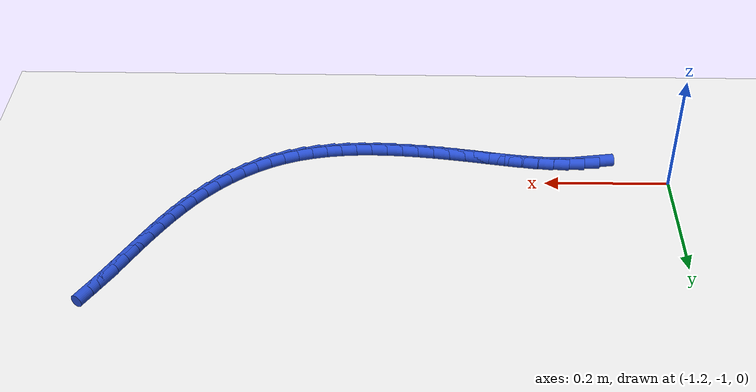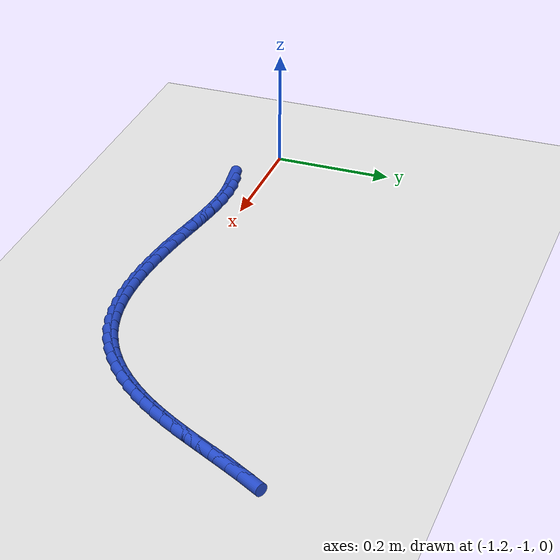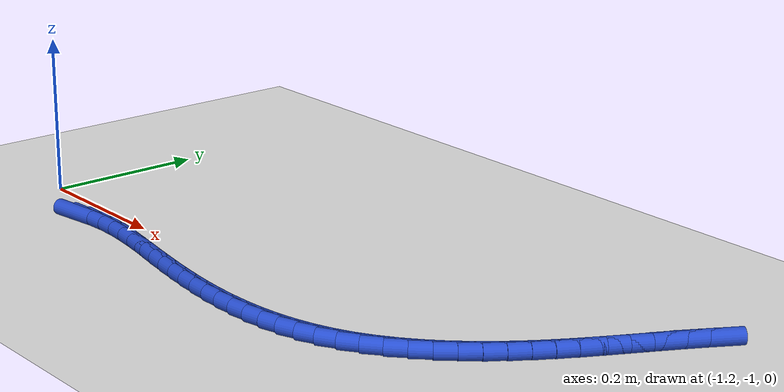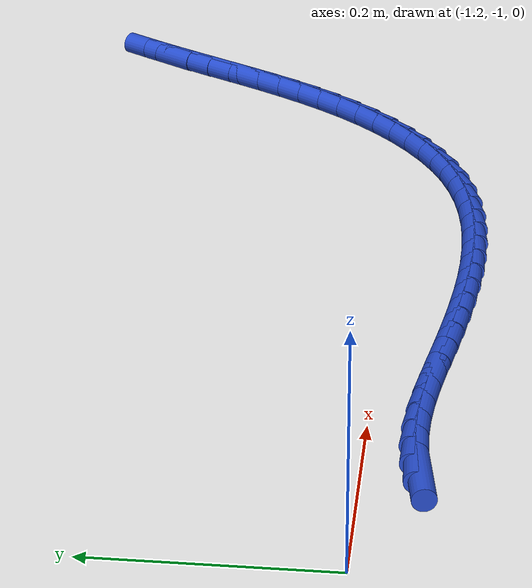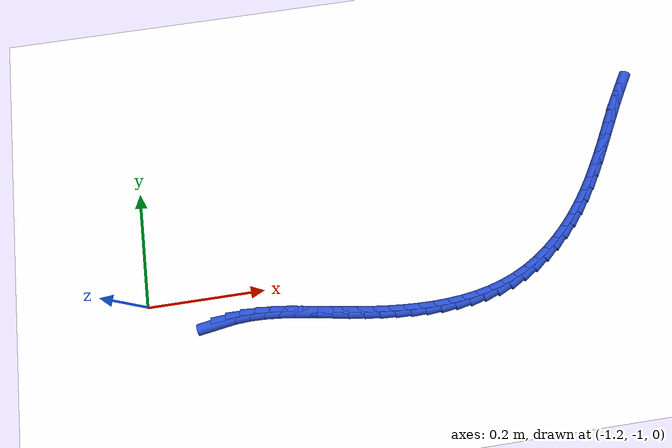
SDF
<sdf version="1.6">
 <world name="default">
  <model name="ground_plane">
   <static>1</static>
   <link name="link">
    <collision name="collision">
     <geometry><plane><normal>0 0 1</normal><size>100 100</size></plane></geometry>
     <surface><friction><ode><mu>100</mu><mu2>50</mu2></ode></friction></surface>
    </collision>
    <visual name="visual">
     <cast_shadows>0</cast_shadows>
     <geometry><plane><normal>0 0 1</normal><size>100 100</size></plane></geometry>
     <material>
      <script><uri>file://media/materials/scripts/gazebo.material</uri><name>Gazebo/WhiteGlow</name></script>
     </material>
    </visual>
   </link>
  </model>
  <model name="line">
   <link name="link_221">
    <pose>-1.0760651449670091 -1.0447416029925942 0.01 0 1.57 0.15056271231897178</pose>
    <collision name="collision">
     <geometry><cylinder><radius>0.01</radius><length>0.08</length></cylinder></geometry>
    </collision>
    <visual name="visual">
     <material>
      <script><name>Gazebo/Blue</name><uri>file://media/materials/scripts/gazebo.material</uri></script>
     </material>
     <geometry><cylinder><radius>0.01</radius><length>0.08</length></cylinder></geometry>
    </visual>
   </link>
   <link name="link_222">
    <pose>-1.051920773574172 -1.0410786403015344 0.01 0 1.57 0.05712141564876695</pose>
    <collision name="collision">
     <geometry><cylinder><radius>0.01</radius><length>0.08</length></cylinder></geometry>
    </collision>
    <visual name="visual">
     <material>
      <script><name>Gazebo/Blue</name><uri>file://media/materials/scripts/gazebo.material</uri></script>
     </material>
     <geometry><cylinder><radius>0.01</radius><length>0.08</length></cylinder></geometry>
    </visual>
   </link>
   <link name="link_223">
    <pose>-1.0274121458678542 -1.0396771481706073 0.01 0 1.57 -0.019389395930570708</pose>
    <collision name="collision">
     <geometry><cylinder><radius>0.01</radius><length>0.08</length></cylinder></geometry>
    </collision>
    <visual name="visual">
     <material>
      <script><name>Gazebo/Blue</name><uri>file://media/materials/scripts/gazebo.material</uri></script>
     </material>
     <geometry><cylinder><radius>0.01</radius><length>0.08</length></cylinder></geometry>
    </visual>
   </link>
   <link name="link_224">
    <pose>-1.002570446975548 -1.0401588740756031 0.01 0 1.57 -0.07885002912459392</pose>
    <collision name="collision">
     <geometry><cylinder><radius>0.01</radius><length>0.08</length></cylinder></geometry>
    </collision>
    <visual name="visual">
     <material>
      <script><name>Gazebo/Blue</name><uri>file://media/materials/scripts/gazebo.material</uri></script>
     </material>
     <geometry><cylinder><radius>0.01</radius><length>0.08</length></cylinder></geometry>
    </visual>
   </link>
   <link name="link_225">
    <pose>-0.977426862024744 -1.0421455654923135 0.01 0 1.57 -0.1218986882985415</pose>
    <collision name="collision">
     <geometry><cylinder><radius>0.01</radius><length>0.08</length></cylinder></geometry>
    </collision>
    <visual name="visual">
     <material>
      <script><name>Gazebo/Blue</name><uri>file://media/materials/scripts/gazebo.material</uri></script>
     </material>
     <geometry><cylinder><radius>0.01</radius><length>0.08</length></cylinder></geometry>
    </visual>
   </link>
   <link name="link_226">
    <pose>-0.9520125761429336 -1.0452589698965287 0.01 0 1.57 -0.14941579561119425</pose>
    <collision name="collision">
     <geometry><cylinder><radius>0.01</radius><length>0.08</length></cylinder></geometry>
    </collision>
    <visual name="visual">
     <material>
      <script><name>Gazebo/Blue</name><uri>file://media/materials/scripts/gazebo.material</uri></script>
     </material>
     <geometry><cylinder><radius>0.01</radius><length>0.08</length></cylinder></geometry>
    </visual>
   </link>
   <link name="link_227">
    <pose>-0.9263587744576075 -1.0491208347640397 0.01 0 1.57 -0.16220212897259148</pose>
    <collision name="collision">
     <geometry><cylinder><radius>0.01</radius><length>0.08</length></cylinder></geometry>
    </collision>
    <visual name="visual">
     <material>
      <script><name>Gazebo/Blue</name><uri>file://media/materials/scripts/gazebo.material</uri></script>
     </material>
     <geometry><cylinder><radius>0.01</radius><length>0.08</length></cylinder></geometry>
    </visual>
   </link>
   <link name="link_228">
    <pose>-0.9004966420962577 -1.053352907570638 0.01 0 1.57 -0.16093039838924558</pose>
    <collision name="collision">
     <geometry><cylinder><radius>0.01</radius><length>0.08</length></cylinder></geometry>
    </collision>
    <visual name="visual">
     <material>
      <script><name>Gazebo/Blue</name><uri>file://media/materials/scripts/gazebo.material</uri></script>
     </material>
     <geometry><cylinder><radius>0.01</radius><length>0.08</length></cylinder></geometry>
    </visual>
   </link>
   <link name="link_229">
    <pose>-0.8744578583261847 -1.0575798935733762 0.01 0 1.57 -0.14973793300560126</pose>
    <collision name="collision">
     <geometry><cylinder><radius>0.01</radius><length>0.08</length></cylinder></geometry>
    </collision>
    <visual name="visual">
     <material>
      <script><name>Gazebo/Blue</name><uri>file://media/materials/scripts/gazebo.material</uri></script>
     </material>
     <geometry><cylinder><radius>0.01</radius><length>0.08</length></cylinder></geometry>
    </visual>
   </link>
   <link name="link_230">
    <pose>-0.8482909953366485 -1.0615276142863495 0.01 0 1.57 -0.13335208386781436</pose>
    <collision name="collision">
     <geometry><cylinder><radius>0.01</radius><length>0.08</length></cylinder></geometry>
    </collision>
    <visual name="visual">
     <material>
      <script><name>Gazebo/Blue</name><uri>file://media/materials/scripts/gazebo.material</uri></script>
     </material>
     <geometry><cylinder><radius>0.01</radius><length>0.08</length></cylinder></geometry>
    </visual>
   </link>
   <link name="link_231">
    <pose>-0.8220653163700545 -1.065045742020653 0.01 0 1.57 -0.1119046110688275</pose>
    <collision name="collision">
     <geometry><cylinder><radius>0.01</radius><length>0.08</length></cylinder></geometry>
    </collision>
    <visual name="visual">
     <material>
      <script><name>Gazebo/Blue</name><uri>file://media/materials/scripts/gazebo.material</uri></script>
     </material>
     <geometry><cylinder><radius>0.01</radius><length>0.08</length></cylinder></geometry>
    </visual>
   </link>
   <link name="link_232">
    <pose>-0.7958513482425175 -1.0679915124825332 0.01 0 1.57 -0.08515526743854689</pose>
    <collision name="collision">
     <geometry><cylinder><radius>0.01</radius><length>0.08</length></cylinder></geometry>
    </collision>
    <visual name="visual">
     <material>
      <script><name>Gazebo/Blue</name><uri>file://media/materials/scripts/gazebo.material</uri></script>
     </material>
     <geometry><cylinder><radius>0.01</radius><length>0.08</length></cylinder></geometry>
    </visual>
   </link>
   <link name="link_233">
    <pose>-0.7697196177701534 -1.070222161378237 0.01 0 1.57 -0.05279222787378462</pose>
    <collision name="collision">
     <geometry><cylinder><radius>0.01</radius><length>0.08</length></cylinder></geometry>
    </collision>
    <visual name="visual">
     <material>
      <script><name>Gazebo/Blue</name><uri>file://media/materials/scripts/gazebo.material</uri></script>
     </material>
     <geometry><cylinder><radius>0.01</radius><length>0.08</length></cylinder></geometry>
    </visual>
   </link>
   <link name="link_234">
    <pose>-0.7437406517690756 -1.0715949244140102 0.01 0 1.57 -0.014446796598431592</pose>
    <collision name="collision">
     <geometry><cylinder><radius>0.01</radius><length>0.08</length></cylinder></geometry>
    </collision>
    <visual name="visual">
     <material>
      <script><name>Gazebo/Blue</name><uri>file://media/materials/scripts/gazebo.material</uri></script>
     </material>
     <geometry><cylinder><radius>0.01</radius><length>0.08</length></cylinder></geometry>
    </visual>
   </link>
   <link name="link_235">
    <pose>-0.7179849770553993 -1.071967037296099 0.01 0 1.57 0.030283171547134818</pose>
    <collision name="collision">
     <geometry><cylinder><radius>0.01</radius><length>0.08</length></cylinder></geometry>
    </collision>
    <visual name="visual">
     <material>
      <script><name>Gazebo/Blue</name><uri>file://media/materials/scripts/gazebo.material</uri></script>
     </material>
     <geometry><cylinder><radius>0.01</radius><length>0.08</length></cylinder></geometry>
    </visual>
   </link>
   <link name="link_236">
    <pose>-0.6925231204452401 -1.07119573573075 0.01 0 1.57 0.08179653985320122</pose>
    <collision name="collision">
     <geometry><cylinder><radius>0.01</radius><length>0.08</length></cylinder></geometry>
    </collision>
    <visual name="visual">
     <material>
      <script><name>Gazebo/Blue</name><uri>file://media/materials/scripts/gazebo.material</uri></script>
     </material>
     <geometry><cylinder><radius>0.01</radius><length>0.08</length></cylinder></geometry>
    </visual>
   </link>
   <link name="link_237">
    <pose>-0.6674256087547124 -1.0691382554242093 0.01 0 1.57 0.14043402253938472</pose>
    <collision name="collision">
     <geometry><cylinder><radius>0.01</radius><length>0.08</length></cylinder></geometry>
    </collision>
    <visual name="visual">
     <material>
      <script><name>Gazebo/Blue</name><uri>file://media/materials/scripts/gazebo.material</uri></script>
     </material>
     <geometry><cylinder><radius>0.01</radius><length>0.08</length></cylinder></geometry>
    </visual>
   </link>
   <link name="link_238">
    <pose>-0.6427629687999314 -1.0656518320827235 0.01 0 1.57 0.20640177597593737</pose>
    <collision name="collision">
     <geometry><cylinder><radius>0.01</radius><length>0.08</length></cylinder></geometry>
    </collision>
    <visual name="visual">
     <material>
      <script><name>Gazebo/Blue</name><uri>file://media/materials/scripts/gazebo.material</uri></script>
     </material>
     <geometry><cylinder><radius>0.01</radius><length>0.08</length></cylinder></geometry>
    </visual>
   </link>
   <link name="link_239">
    <pose>-0.618605727397012 -1.0605937014125386 0.01 0 1.57 0.27967459742374856</pose>
    <collision name="collision">
     <geometry><cylinder><radius>0.01</radius><length>0.08</length></cylinder></geometry>
    </collision>
    <visual name="visual">
     <material>
      <script><name>Gazebo/Blue</name><uri>file://media/materials/scripts/gazebo.material</uri></script>
     </material>
     <geometry><cylinder><radius>0.01</radius><length>0.08</length></cylinder></geometry>
    </visual>
   </link>
   <link name="link_240">
    <pose>-0.5950244113620692 -1.053821099119901 0.01 0 1.57 0.35988886189920694</pose>
    <collision name="collision">
     <geometry><cylinder><radius>0.01</radius><length>0.08</length></cylinder></geometry>
    </collision>
    <visual name="visual">
     <material>
      <script><name>Gazebo/Blue</name><uri>file://media/materials/scripts/gazebo.material</uri></script>
     </material>
     <geometry><cylinder><radius>0.01</radius><length>0.08</length></cylinder></geometry>
    </visual>
   </link>
   <link name="link_241">
    <pose>-0.5720895475112178 -1.0451912609110574 0.01 0 1.57 0.4462447370898022</pose>
    <collision name="collision">
     <geometry><cylinder><radius>0.01</radius><length>0.08</length></cylinder></geometry>
    </collision>
    <visual name="visual">
     <material>
      <script><name>Gazebo/Blue</name><uri>file://media/materials/scripts/gazebo.material</uri></script>
     </material>
     <geometry><cylinder><radius>0.01</radius><length>0.08</length></cylinder></geometry>
    </visual>
   </link>
   <link name="link_242">
    <pose>-0.5498716705340789 -1.0345615196797329 0.01 0 1.57 0.5345034280636899</pose>
    <collision name="collision">
     <geometry><cylinder><radius>0.01</radius><length>0.08</length></cylinder></geometry>
    </collision>
    <visual name="visual">
     <material>
      <script><name>Gazebo/Blue</name><uri>file://media/materials/scripts/gazebo.material</uri></script>
     </material>
     <geometry><cylinder><radius>0.01</radius><length>0.08</length></cylinder></geometry>
    </visual>
   </link>
   <link name="link_243">
    <pose>-0.5284486260936727 -1.021879452113618 0.01 0 1.57 0.6158973821177238</pose>
    <collision name="collision">
     <geometry><cylinder><radius>0.01</radius><length>0.08</length></cylinder></geometry>
    </collision>
    <visual name="visual">
     <material>
      <script><name>Gazebo/Blue</name><uri>file://media/materials/scripts/gazebo.material</uri></script>
     </material>
     <geometry><cylinder><radius>0.01</radius><length>0.08</length></cylinder></geometry>
    </visual>
   </link>
   <link name="link_244">
    <pose>-0.5079191121798619 -1.0073500278609109 0.01 0 1.57 0.6901352915237324</pose>
    <collision name="collision">
     <geometry><cylinder><radius>0.01</radius><length>0.08</length></cylinder></geometry>
    </collision>
    <visual name="visual">
     <material>
      <script><name>Gazebo/Blue</name><uri>file://media/materials/scripts/gazebo.material</uri></script>
     </material>
     <geometry><cylinder><radius>0.01</radius><length>0.08</length></cylinder></geometry>
    </visual>
   </link>
   <link name="link_245">
    <pose>-0.48838552011886616 -0.9912238056681517 0.01 0 1.57 0.7585909390549408</pose>
    <collision name="collision">
     <geometry><cylinder><radius>0.01</radius><length>0.08</length></cylinder></geometry>
    </collision>
    <visual name="visual">
     <material>
      <script><name>Gazebo/Blue</name><uri>file://media/materials/scripts/gazebo.material</uri></script>
     </material>
     <geometry><cylinder><radius>0.01</radius><length>0.08</length></cylinder></geometry>
    </visual>
   </link>
   <link name="link_246">
    <pose>-0.46995024123690604 -0.973751344281883 0.01 0 1.57 0.8226285833227933</pose>
    <collision name="collision">
     <geometry><cylinder><radius>0.01</radius><length>0.08</length></cylinder></geometry>
    </collision>
    <visual name="visual">
     <material>
      <script><name>Gazebo/Blue</name><uri>file://media/materials/scripts/gazebo.material</uri></script>
     </material>
     <geometry><cylinder><radius>0.01</radius><length>0.08</length></cylinder></geometry>
    </visual>
   </link>
   <link name="link_247">
    <pose>-0.45271566495522647 -0.9551832015249665 0.01 0 1.57 0.8826345580363474</pose>
    <collision name="collision">
     <geometry><cylinder><radius>0.01</radius><length>0.08</length></cylinder></geometry>
    </collision>
    <visual name="visual">
     <material>
      <script><name>Gazebo/Blue</name><uri>file://media/materials/scripts/gazebo.material</uri></script>
     </material>
     <geometry><cylinder><radius>0.01</radius><length>0.08</length></cylinder></geometry>
    </visual>
   </link>
   <link name="link_248">
    <pose>-0.43673249107565076 -0.9357448720988466 0.01 0 1.57 0.9356757096672884</pose>
    <collision name="collision">
     <geometry><cylinder><radius>0.01</radius><length>0.08</length></cylinder></geometry>
    </collision>
    <visual name="visual">
     <material>
      <script><name>Gazebo/Blue</name><uri>file://media/materials/scripts/gazebo.material</uri></script>
     </material>
     <geometry><cylinder><radius>0.01</radius><length>0.08</length></cylinder></geometry>
    </visual>
   </link>
   <link name="link_249">
    <pose>-0.42186492121950697 -0.9155714219768326 0.01 0 1.57 0.9805591756971983</pose>
    <collision name="collision">
     <geometry><cylinder><radius>0.01</radius><length>0.08</length></cylinder></geometry>
    </collision>
    <visual name="visual">
     <material>
      <script><name>Gazebo/Blue</name><uri>file://media/materials/scripts/gazebo.material</uri></script>
     </material>
     <geometry><cylinder><radius>0.01</radius><length>0.08</length></cylinder></geometry>
    </visual>
   </link>
   <link name="link_250">
    <pose>-0.40793510994131715 -0.8947775294653794 0.01 0 1.57 1.0170186185662313</pose>
    <collision name="collision">
     <geometry><cylinder><radius>0.01</radius><length>0.08</length></cylinder></geometry>
    </collision>
    <visual name="visual">
     <material>
      <script><name>Gazebo/Blue</name><uri>file://media/materials/scripts/gazebo.material</uri></script>
     </material>
     <geometry><cylinder><radius>0.01</radius><length>0.08</length></cylinder></geometry>
    </visual>
   </link>
   <link name="link_251">
    <pose>-0.394765211795603 -0.8734778728709414 0.01 0 1.57 1.0449641901874545</pose>
    <collision name="collision">
     <geometry><cylinder><radius>0.01</radius><length>0.08</length></cylinder></geometry>
    </collision>
    <visual name="visual">
     <material>
      <script><name>Gazebo/Blue</name><uri>file://media/materials/scripts/gazebo.material</uri></script>
     </material>
     <geometry><cylinder><radius>0.01</radius><length>0.08</length></cylinder></geometry>
    </visual>
   </link>
   <link name="link_252">
    <pose>-0.38217738133688617 -0.8517871304999736 0.01 0 1.57 1.0644064819273547</pose>
    <collision name="collision">
     <geometry><cylinder><radius>0.01</radius><length>0.08</length></cylinder></geometry>
    </collision>
    <visual name="visual">
     <material>
      <script><name>Gazebo/Blue</name><uri>file://media/materials/scripts/gazebo.material</uri></script>
     </material>
     <geometry><cylinder><radius>0.01</radius><length>0.08</length></cylinder></geometry>
    </visual>
   </link>
   <link name="link_253">
    <pose>-0.36999377311968806 -0.82981998065893 0.01 0 1.57 1.0753959110082458</pose>
    <collision name="collision">
     <geometry><cylinder><radius>0.01</radius><length>0.08</length></cylinder></geometry>
    </collision>
    <visual name="visual">
     <material>
      <script><name>Gazebo/Blue</name><uri>file://media/materials/scripts/gazebo.material</uri></script>
     </material>
     <geometry><cylinder><radius>0.01</radius><length>0.08</length></cylinder></geometry>
    </visual>
   </link>
   <link name="link_254">
    <pose>-0.35803654169853055 -0.8076911016542656 0.01 0 1.57 1.077980775721848</pose>
    <collision name="collision">
     <geometry><cylinder><radius>0.01</radius><length>0.08</length></cylinder></geometry>
    </collision>
    <visual name="visual">
     <material>
      <script><name>Gazebo/Blue</name><uri>file://media/materials/scripts/gazebo.material</uri></script>
     </material>
     <geometry><cylinder><radius>0.01</radius><length>0.08</length></cylinder></geometry>
    </visual>
   </link>
   <link name="link_255">
    <pose>-0.3461278416279352 -0.7855151717924347 0.01 0 1.57 1.0721840513932988</pose>
    <collision name="collision">
     <geometry><cylinder><radius>0.01</radius><length>0.08</length></cylinder></geometry>
    </collision>
    <visual name="visual">
     <material>
      <script><name>Gazebo/Blue</name><uri>file://media/materials/scripts/gazebo.material</uri></script>
     </material>
     <geometry><cylinder><radius>0.01</radius><length>0.08</length></cylinder></geometry>
    </visual>
   </link>
   <link name="link_256">
    <pose>-0.3340898274624233 -0.7634068693798914 0.01 0 1.57 1.0579981196299797</pose>
    <collision name="collision">
     <geometry><cylinder><radius>0.01</radius><length>0.08</length></cylinder></geometry>
    </collision>
    <visual name="visual">
     <material>
      <script><name>Gazebo/Blue</name><uri>file://media/materials/scripts/gazebo.material</uri></script>
     </material>
     <geometry><cylinder><radius>0.01</radius><length>0.08</length></cylinder></geometry>
    </visual>
   </link>
   <link name="link_257">
    <pose>-0.32174465375651706 -0.7414808727230909 0.01 0 1.57 1.0353970136105966</pose>
    <collision name="collision">
     <geometry><cylinder><radius>0.01</radius><length>0.08</length></cylinder></geometry>
    </collision>
    <visual name="visual">
     <material>
      <script><name>Gazebo/Blue</name><uri>file://media/materials/scripts/gazebo.material</uri></script>
     </material>
     <geometry><cylinder><radius>0.01</radius><length>0.08</length></cylinder></geometry>
    </visual>
   </link>
  </model>
 </world>
</sdf>
